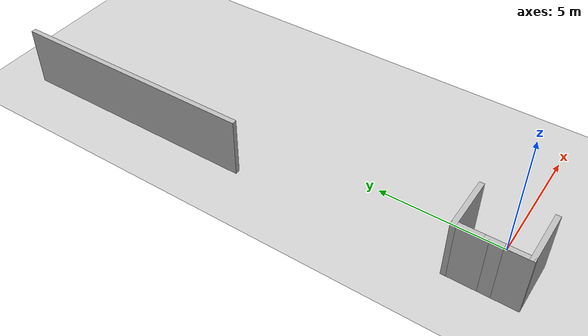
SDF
<?xml version='1.0'?>
<sdf version='1.4'>
  <world name="feedbackMethodDemoWorld">
    <scene>
      <sky/>
    </scene>
    <include>
      <uri>model://ground_plane</uri>
    </include>
    <light name='sun' type='directional'>
      <cast_shadows>0</cast_shadows>
      <pose>0 0 30 0 0 0</pose>
      <diffuse>0.8 0.8 0.8 1</diffuse>
      <specular>0.2 0.2 0.2 1</specular>
      <attenuation>
        <range>1000</range>
        <constant>0.9</constant>
        <linear>0.01</linear>
        <quadratic>0.001</quadratic>
      </attenuation>
      <direction>-0.5 0.1 -0.9</direction>
    </light>
    <model name='VideoDemoWorld'>
      <link name='Wall_1'>
        <collision name='Wall_1_Collision'>
          <geometry>
            <box>
              <size>2.2 0.2 2.5</size>
            </box>
          </geometry>
          <pose>0 0 1.25 0 -0 0</pose>
        </collision>
        <visual name='Wall_1_Visual'>
          <pose>0 0 1.25 0 -0 0</pose>
          <geometry>
            <box>
              <size>2.2 0.2 2.5</size>
            </box>
          </geometry>
          <material>
            <script>
              <uri>file://media/materials/scripts/kitchen.material</uri>
              <name>Kitchen/Wall</name>
            </script>
          </material>
        </visual>
        <velocity_decay>
          <linear>0</linear>
          <angular>0</angular>
        </velocity_decay>
        <pose>-1.1 1.35 0 0 -0 3.14159</pose>
      </link>
      <link name='Wall_2'>
        <collision name='Wall_2_Collision'>
          <geometry>
            <box>
              <size>1.31 0.2 2.5</size>
            </box>
          </geometry>
          <pose>0 0 1.25 0 -0 0</pose>
        </collision>
        <visual name='Wall_2_Visual'>
          <pose>0 0 1.25 0 -0 0</pose>
          <geometry>
            <box>
              <size>1.31 0.2 2.5</size>
            </box>
          </geometry>
          <material>
            <script>
              <uri>file://media/materials/scripts/kitchen.material</uri>
              <name>Kitchen/Wall</name>
            </script>
          </material>
        </visual>
        <velocity_decay>
          <linear>0</linear>
          <angular>0</angular>
        </velocity_decay>
        <pose>-2.1 0.795 0 0 0 -1.5708</pose>
      </link>
      <link name='Wall_3'>
        <collision name='Wall_3_Collision'>
          <geometry>
            <box>
              <size>0.68 0.2 2.5</size>
            </box>
          </geometry>
          <pose>0 0 1.25 0 -0 0</pose>
        </collision>
        <visual name='Wall_3_Visual'>
          <pose>0 0 1.25 0 -0 0</pose>
          <geometry>
            <box>
              <size>0.68 0.2 2.5</size>
            </box>
          </geometry>
          <material>
            <script>
              <uri>file://media/materials/scripts/kitchen.material</uri>
              <name>Kitchen/Wall</name>
            </script>
          </material>
        </visual>
        <velocity_decay>
          <linear>0</linear>
          <angular>0</angular>
        </velocity_decay>
        <pose>-2.1 0 0 0 0 -1.5708</pose>
      </link>
      <link name='Wall_4'>
        <collision name='Wall_4_Collision'>
          <geometry>
            <box>
              <size>1.21 0.2 2.5</size>
            </box>
          </geometry>
          <pose>0 0 1.25 0 -0 0</pose>
        </collision>
        <visual name='Wall_4_Visual'>
          <pose>0 0 1.25 0 -0 0</pose>
          <geometry>
            <box>
              <size>1.21 0.2 2.5</size>
            </box>
          </geometry>
          <material>
            <script>
              <uri>file://media/materials/scripts/kitchen.material</uri>
              <name>Kitchen/Wall</name>
            </script>
          </material>
        </visual>
        <velocity_decay>
          <linear>0</linear>
          <angular>0</angular>
        </velocity_decay>
        <pose>-2.1 -0.745 0 0 0 -1.5708</pose>
      </link>
      <link name='Wall_5'>
        <collision name='Wall_5_Collision'>
          <geometry>
            <box>
              <size>2.2 0.2 2.5</size>
            </box>
          </geometry>
          <pose>0 0 1.25 0 -0 0</pose>
        </collision>
        <visual name='Wall_5_Visual'>
          <pose>0 0 1.25 0 -0 0</pose>
          <geometry>
            <box>
              <size>2.2 0.2 2.5</size>
            </box>
          </geometry>
          <material>
            <script>
              <uri>file://media/materials/scripts/kitchen.material</uri>
              <name>Kitchen/Wall</name>
            </script>
          </material>
        </visual>
        <velocity_decay>
          <linear>0</linear>
          <angular>0</angular>
        </velocity_decay>
        <pose>-1.1 -1.25 0 0 -0 0</pose>
      </link>
      <link name='Wall_6'>
        <collision name='Wall_6_Collision'>
          <geometry>
            <box>
              <size>10.2 0.2 2.5</size>
            </box>
          </geometry>
          <pose>0 0 1.25 0 -0 0</pose>
        </collision>
        <visual name='Wall_6_Visual'>
          <pose>0 0 1.25 0 -0 0</pose>
          <geometry>
            <box>
              <size>10.2 0.2 2.5</size>
            </box>
          </geometry>
          <material>
            <script>
              <uri>file://media/materials/scripts/kitchen.material</uri>
              <name>Kitchen/Wall</name>
            </script>
          </material>
        </visual>
        <velocity_decay>
          <linear>0</linear>
          <angular>0</angular>
        </velocity_decay>
        <pose>-2.1 15 0 0 -0 1.5708</pose>
      </link>
      <static>1</static>
    </model>
  </world>
</sdf>
